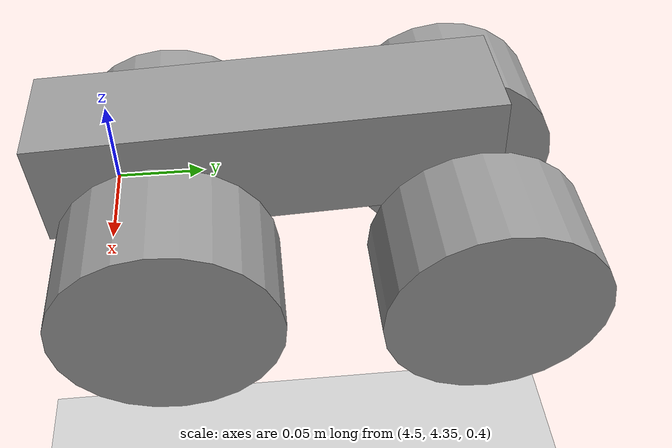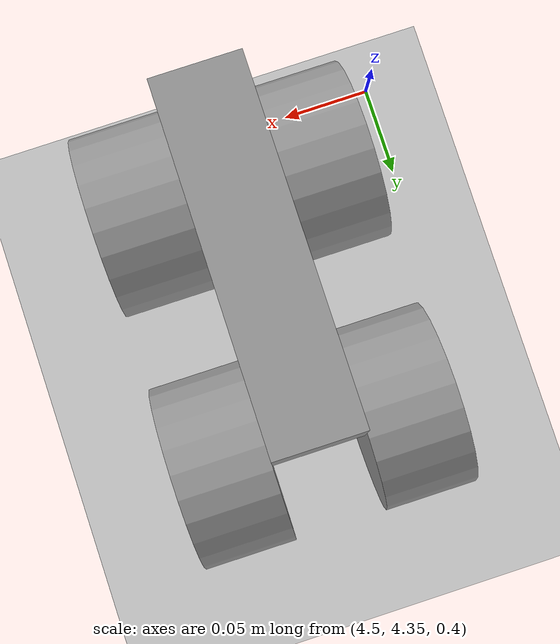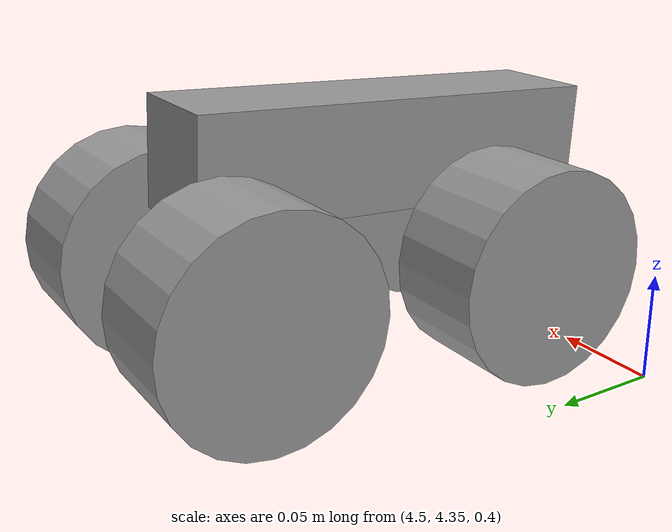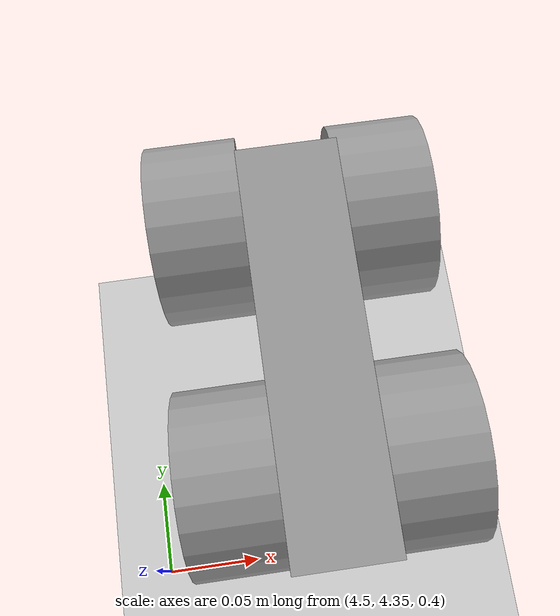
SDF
<sdf version="1.6">
 <world name="default">
  <model name="ground_plane">
   <static>1</static>
   <link name="link">
    <collision name="collision">
     <geometry><plane><normal>0 0 1</normal><size>100 100</size></plane></geometry>
     <surface>
      <contact><collide_bitmask>65535</collide_bitmask></contact>
      <friction><ode><mu>100</mu><mu2>50</mu2></ode></friction>
     </surface>
    </collision>
    <visual name="visual">
     <cast_shadows>0</cast_shadows>
     <geometry><plane><normal>0 0 1</normal><size>100 100</size></plane></geometry>
     <material>
      <script><uri>file://media/materials/scripts/gazebo.material</uri><name>Gazebo/Grey</name></script>
     </material>
    </visual>
   </link>
  </model>
  <model name="oscar">
   <link name="link_1">
    <inertial>
     <mass>1</mass>
     <inertia><ixx>0.145833</ixx><ixy>0</ixy><ixz>0</ixz><iyy>0.145833</iyy><iyz>0</iyz><izz>0.125</izz></inertia>
    </inertial>
    <pose>-0.030984 -0.02472 0.043 0 -1.57079 0</pose>
    <visual name="visual">
     <geometry><cylinder><radius>0.05</radius><length>0.05</length></cylinder></geometry>
     <material>
      <lighting>1</lighting>
      <script><uri>file://media/materials/scripts/gazebo.material</uri><name>Gazebo/Grey</name></script>
      <shader type="pixel"><normal_map>__default__</normal_map></shader>
      <ambient>0.3 0.3 0.3 1</ambient>
      <diffuse>0.7 0.7 0.7 1</diffuse>
      <specular>0.01 0.01 0.01 1</specular>
      <emissive>0 0 0 1</emissive>
     </material>
    </visual>
    <collision name="collision">
     <geometry><cylinder><radius>0.05</radius><length>0.05</length></cylinder></geometry>
     <surface>
      <friction>
       <ode><mu>1</mu><mu2>1</mu2><fdir1>0 0 0</fdir1><slip1>0</slip1><slip2>0</slip2></ode>
       <torsional>
        <coefficient>1</coefficient>
        <patch_radius>0</patch_radius>
        <surface_radius>0</surface_radius>
        <use_patch_radius>1</use_patch_radius>
        <ode><slip>0</slip></ode>
       </torsional>
      </friction>
      <bounce><restitution_coefficient>0</restitution_coefficient><threshold>1e+06</threshold></bounce>
      <contact>
       <collide_without_contact>0</collide_without_contact>
       <collide_without_contact_bitmask>1</collide_without_contact_bitmask>
       <collide_bitmask>1</collide_bitmask>
       <ode>
        <soft_cfm>0</soft_cfm>
        <soft_erp>0.2</soft_erp>
        <kp>1e+13</kp>
        <kd>1</kd>
        <max_vel>0.01</max_vel>
        <min_depth>0</min_depth>
       </ode>
       <bullet>
        <split_impulse>1</split_impulse>
        <split_impulse_penetration_threshold>-0.01</split_impulse_penetration_threshold>
        <soft_cfm>0</soft_cfm>
        <soft_erp>0.2</soft_erp>
        <kp>1e+13</kp>
        <kd>1</kd>
       </bullet>
      </contact>
     </surface>
    </collision>
   </link>
   <link name="link_1_clone">
    <inertial>
     <mass>1</mass>
     <inertia><ixx>0.145833</ixx><ixy>0</ixy><ixz>0</ixz><iyy>0.145833</iyy><iyz>0</iyz><izz>0.125</izz></inertia>
    </inertial>
    <pose>-0.030984 0.115279 0.043 0 -1.57079 0</pose>
    <visual name="visual">
     <geometry><cylinder><radius>0.05</radius><length>0.05</length></cylinder></geometry>
     <material>
      <lighting>1</lighting>
      <script><uri>file://media/materials/scripts/gazebo.material</uri><name>Gazebo/Grey</name></script>
      <shader type="pixel"><normal_map>__default__</normal_map></shader>
      <ambient>0.3 0.3 0.3 1</ambient>
      <diffuse>0.7 0.7 0.7 1</diffuse>
      <specular>0.01 0.01 0.01 1</specular>
      <emissive>0 0 0 1</emissive>
     </material>
    </visual>
    <collision name="collision">
     <geometry><cylinder><radius>0.05</radius><length>0.05</length></cylinder></geometry>
     <surface>
      <friction>
       <ode><mu>1</mu><mu2>1</mu2><fdir1>0 0 0</fdir1><slip1>0</slip1><slip2>0</slip2></ode>
       <torsional>
        <coefficient>1</coefficient>
        <patch_radius>0</patch_radius>
        <surface_radius>0</surface_radius>
        <use_patch_radius>1</use_patch_radius>
        <ode><slip>0</slip></ode>
       </torsional>
      </friction>
      <bounce><restitution_coefficient>0</restitution_coefficient><threshold>1e+06</threshold></bounce>
      <contact>
       <collide_without_contact>0</collide_without_contact>
       <collide_without_contact_bitmask>1</collide_without_contact_bitmask>
       <collide_bitmask>1</collide_bitmask>
       <ode>
        <soft_cfm>0</soft_cfm>
        <soft_erp>0.2</soft_erp>
        <kp>1e+13</kp>
        <kd>1</kd>
        <max_vel>0.01</max_vel>
        <min_depth>0</min_depth>
       </ode>
       <bullet>
        <split_impulse>1</split_impulse>
        <split_impulse_penetration_threshold>-0.01</split_impulse_penetration_threshold>
        <soft_cfm>0</soft_cfm>
        <soft_erp>0.2</soft_erp>
        <kp>1e+13</kp>
        <kd>1</kd>
       </bullet>
      </contact>
     </surface>
    </collision>
   </link>
   <link name="link_2">
    <inertial>
     <mass>1</mass>
     <inertia>
      <ixx>0.166667</ixx>
      <ixy>0</ixy>
      <ixz>0</ixz>
      <iyy>0.166667</iyy>
      <iyz>0</iyz>
      <izz>0.166667</izz>
     </inertia>
     <pose>0 0 0.05 0 -0 0</pose>
    </inertial>
    <pose>0.019016 0.025279 0.093 0 -0 0</pose>
    <visual name="visual">
     <geometry><box><size>0.05 0.2 0.05</size></box></geometry>
     <material>
      <lighting>1</lighting>
      <script><uri>file://media/materials/scripts/gazebo.material</uri><name>Gazebo/Grey</name></script>
      <shader type="pixel"><normal_map>__default__</normal_map></shader>
      <ambient>0.3 0.3 0.3 1</ambient>
      <diffuse>0.7 0.7 0.7 1</diffuse>
      <specular>0.01 0.01 0.01 1</specular>
      <emissive>0 0 0 1</emissive>
     </material>
    </visual>
    <collision name="collision">
     <geometry><box><size>1 1 1</size></box></geometry>
     <surface>
      <friction>
       <ode><mu>1</mu><mu2>1</mu2><fdir1>0 0 0</fdir1><slip1>0</slip1><slip2>0</slip2></ode>
       <torsional>
        <coefficient>1</coefficient>
        <patch_radius>0</patch_radius>
        <surface_radius>0</surface_radius>
        <use_patch_radius>1</use_patch_radius>
        <ode><slip>0</slip></ode>
       </torsional>
      </friction>
      <bounce><restitution_coefficient>0</restitution_coefficient><threshold>1e+06</threshold></bounce>
      <contact>
       <collide_without_contact>0</collide_without_contact>
       <collide_without_contact_bitmask>1</collide_without_contact_bitmask>
       <collide_bitmask>1</collide_bitmask>
       <ode>
        <soft_cfm>0</soft_cfm>
        <soft_erp>0.2</soft_erp>
        <kp>1e+13</kp>
        <kd>1</kd>
        <max_vel>0.01</max_vel>
        <min_depth>0</min_depth>
       </ode>
       <bullet>
        <split_impulse>1</split_impulse>
        <split_impulse_penetration_threshold>-0.01</split_impulse_penetration_threshold>
        <soft_cfm>0</soft_cfm>
        <soft_erp>0.2</soft_erp>
        <kp>1e+13</kp>
        <kd>1</kd>
       </bullet>
      </contact>
     </surface>
    </collision>
   </link>
   <link name="link_3">
    <inertial>
     <mass>1</mass>
     <inertia><ixx>0.145833</ixx><ixy>0</ixy><ixz>0</ixz><iyy>0.145833</iyy><iyz>0</iyz><izz>0.125</izz></inertia>
    </inertial>
    <pose>0.069016 -0.024721 0.053 0 1.5707 0</pose>
    <visual name="visual">
     <geometry><cylinder><radius>0.05</radius><length>0.05</length></cylinder></geometry>
     <material>
      <lighting>1</lighting>
      <script><uri>file://media/materials/scripts/gazebo.material</uri><name>Gazebo/Grey</name></script>
      <shader type="pixel"><normal_map>__default__</normal_map></shader>
      <ambient>0.3 0.3 0.3 1</ambient>
      <diffuse>0.7 0.7 0.7 1</diffuse>
      <specular>0.01 0.01 0.01 1</specular>
      <emissive>0 0 0 1</emissive>
     </material>
    </visual>
    <collision name="collision">
     <geometry><cylinder><radius>0.05</radius><length>0.05</length></cylinder></geometry>
     <surface>
      <friction>
       <ode><mu>1</mu><mu2>1</mu2><fdir1>0 0 0</fdir1><slip1>0</slip1><slip2>0</slip2></ode>
       <torsional>
        <coefficient>1</coefficient>
        <patch_radius>0</patch_radius>
        <surface_radius>0</surface_radius>
        <use_patch_radius>1</use_patch_radius>
        <ode><slip>0</slip></ode>
       </torsional>
      </friction>
      <bounce><restitution_coefficient>0</restitution_coefficient><threshold>1e+06</threshold></bounce>
      <contact>
       <collide_without_contact>0</collide_without_contact>
       <collide_without_contact_bitmask>1</collide_without_contact_bitmask>
       <collide_bitmask>1</collide_bitmask>
       <ode>
        <soft_cfm>0</soft_cfm>
        <soft_erp>0.2</soft_erp>
        <kp>1e+13</kp>
        <kd>1</kd>
        <max_vel>0.01</max_vel>
        <min_depth>0</min_depth>
       </ode>
       <bullet>
        <split_impulse>1</split_impulse>
        <split_impulse_penetration_threshold>-0.01</split_impulse_penetration_threshold>
        <soft_cfm>0</soft_cfm>
        <soft_erp>0.2</soft_erp>
        <kp>1e+13</kp>
        <kd>1</kd>
       </bullet>
      </contact>
     </surface>
    </collision>
   </link>
   <link name="link_3_clone">
    <inertial>
     <mass>1</mass>
     <inertia><ixx>0.145833</ixx><ixy>0</ixy><ixz>0</ixz><iyy>0.145833</iyy><iyz>0</iyz><izz>0.125</izz></inertia>
    </inertial>
    <pose>0.069016 0.115274 0.043 1.5708 -1.5707 1.5708</pose>
    <visual name="visual">
     <geometry><cylinder><radius>0.05</radius><length>0.05</length></cylinder></geometry>
     <material>
      <lighting>1</lighting>
      <script><uri>file://media/materials/scripts/gazebo.material</uri><name>Gazebo/Grey</name></script>
      <shader type="pixel"><normal_map>__default__</normal_map></shader>
      <ambient>0.3 0.3 0.3 1</ambient>
      <diffuse>0.7 0.7 0.7 1</diffuse>
      <specular>0.01 0.01 0.01 1</specular>
      <emissive>0 0 0 1</emissive>
     </material>
    </visual>
    <collision name="collision">
     <geometry><cylinder><radius>0.05</radius><length>0.05</length></cylinder></geometry>
     <surface>
      <friction>
       <ode><mu>1</mu><mu2>1</mu2><fdir1>0 0 0</fdir1><slip1>0</slip1><slip2>0</slip2></ode>
       <torsional>
        <coefficient>1</coefficient>
        <patch_radius>0</patch_radius>
        <surface_radius>0</surface_radius>
        <use_patch_radius>1</use_patch_radius>
        <ode><slip>0</slip></ode>
       </torsional>
      </friction>
      <bounce><restitution_coefficient>0</restitution_coefficient><threshold>1e+06</threshold></bounce>
      <contact>
       <collide_without_contact>0</collide_without_contact>
       <collide_without_contact_bitmask>1</collide_without_contact_bitmask>
       <collide_bitmask>1</collide_bitmask>
       <ode>
        <soft_cfm>0</soft_cfm>
        <soft_erp>0.2</soft_erp>
        <kp>1e+13</kp>
        <kd>1</kd>
        <max_vel>0.01</max_vel>
        <min_depth>0</min_depth>
       </ode>
       <bullet>
        <split_impulse>1</split_impulse>
        <split_impulse_penetration_threshold>-0.01</split_impulse_penetration_threshold>
        <soft_cfm>0</soft_cfm>
        <soft_erp>0.2</soft_erp>
        <kp>1e+13</kp>
        <kd>1</kd>
       </bullet>
      </contact>
     </surface>
    </collision>
   </link>
   <joint name="link_2_JOINT_18" type="revolute">
    <parent>link_2</parent>
    <child>link_3</child>
    <axis>
     <xyz>0 0 1</xyz>
     <use_parent_model_frame>0</use_parent_model_frame>
     <limit>
      <lower>-1.79769e+308</lower>
      <upper>1.79769e+308</upper>
      <effort>-1</effort>
      <velocity>-1</velocity>
     </limit>
     <dynamics>
      <spring_reference>0</spring_reference>
      <spring_stiffness>0</spring_stiffness>
      <damping>0</damping>
     </dynamics>
    </axis>
    <physics>
     <ode><limit><cfm>0</cfm><erp>0.2</erp></limit><suspension><cfm>0</cfm><erp>0.2</erp></suspension></ode>
    </physics>
   </joint>
   <joint name="link_2_JOINT_20" type="revolute">
    <parent>link_2</parent>
    <child>link_3_clone</child>
    <axis>
     <xyz>0 0 1</xyz>
     <use_parent_model_frame>0</use_parent_model_frame>
     <limit>
      <lower>-1.79769e+308</lower>
      <upper>1.79769e+308</upper>
      <effort>-1</effort>
      <velocity>-1</velocity>
     </limit>
     <dynamics>
      <spring_reference>0</spring_reference>
      <spring_stiffness>0</spring_stiffness>
      <damping>0</damping>
     </dynamics>
    </axis>
    <physics>
     <ode><limit><cfm>0</cfm><erp>0.2</erp></limit><suspension><cfm>0</cfm><erp>0.2</erp></suspension></ode>
    </physics>
   </joint>
   <joint name="link_2_JOINT_5" type="revolute">
    <parent>link_2</parent>
    <child>link_1</child>
    <axis>
     <xyz>0 0 1</xyz>
     <use_parent_model_frame>0</use_parent_model_frame>
     <limit>
      <lower>-1.79769e+308</lower>
      <upper>1.79769e+308</upper>
      <effort>-1</effort>
      <velocity>-1</velocity>
     </limit>
     <dynamics>
      <spring_reference>0</spring_reference>
      <spring_stiffness>0</spring_stiffness>
      <damping>0</damping>
      <friction>0</friction>
     </dynamics>
    </axis>
    <physics>
     <ode><limit><cfm>0</cfm><erp>0.2</erp></limit><suspension><cfm>0</cfm><erp>0.2</erp></suspension></ode>
    </physics>
   </joint>
   <joint name="link_2_JOINT_6" type="revolute">
    <parent>link_2</parent>
    <child>link_1_clone</child>
    <axis>
     <xyz>0 0 1</xyz>
     <use_parent_model_frame>0</use_parent_model_frame>
     <limit>
      <lower>-1.79769e+308</lower>
      <upper>1.79769e+308</upper>
      <effort>-1</effort>
      <velocity>-1</velocity>
     </limit>
     <dynamics>
      <spring_reference>0</spring_reference>
      <spring_stiffness>0</spring_stiffness>
      <damping>0</damping>
      <friction>0</friction>
     </dynamics>
    </axis>
    <physics>
     <ode><limit><cfm>0</cfm><erp>0.2</erp></limit><suspension><cfm>0</cfm><erp>0.2</erp></suspension></ode>
    </physics>
   </joint>
   <static>0</static>
   <pose>4.57545 4.41717 0.408307 0.050806 8e-06 -0.001836</pose>
  </model>
 </world>
</sdf>
